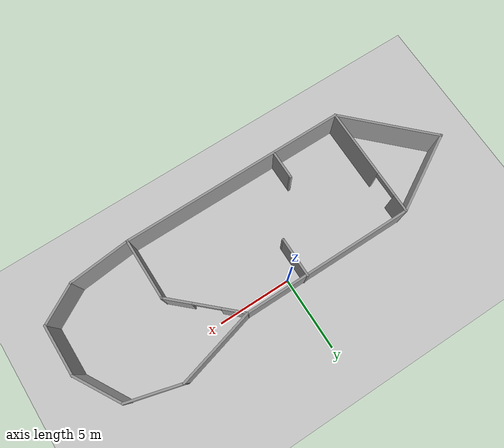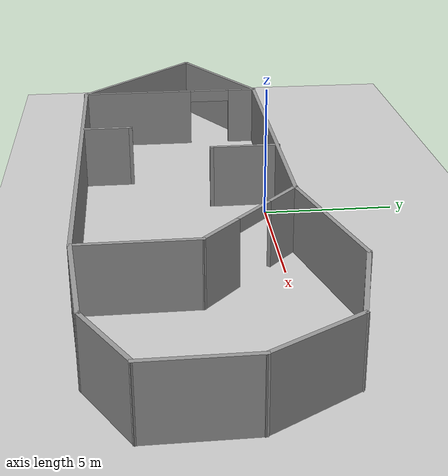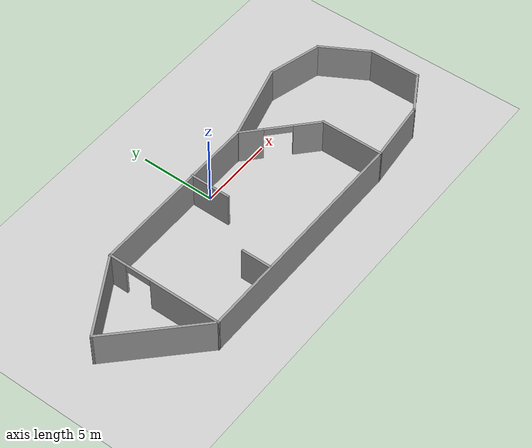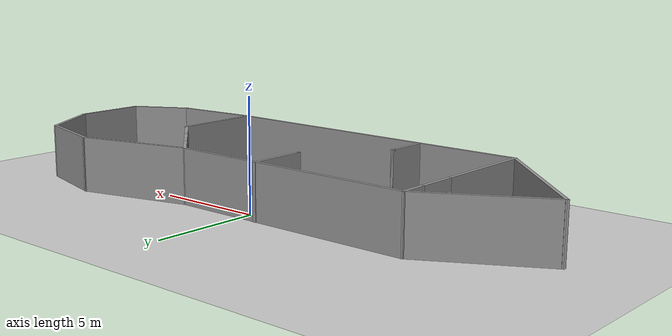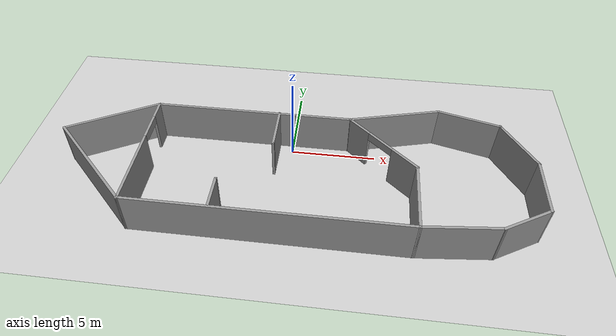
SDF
<sdf version="1.7">
 <world name="default">
  <light name="sun" type="directional">
   <pose>0 0 10 0 -0 0</pose>
   <diffuse>0.8 0.8 0.8 1</diffuse>
   <specular>0.2 0.2 0.2 1</specular>
   <attenuation>
    <range>1000</range>
    <constant>0.9</constant>
    <linear>0.01</linear>
    <quadratic>0.001</quadratic>
   </attenuation>
   <direction>-0.5 0.1 -0.9</direction>
   <spot><inner_angle>0</inner_angle><outer_angle>0</outer_angle><falloff>0</falloff></spot>
  </light>
  <model name="ground_plane">
   <static>1</static>
   <link name="link">
    <collision name="collision">
     <geometry><plane><normal>0 0 1</normal><size>100 100</size></plane></geometry>
     <surface>
      <contact><collide_bitmask>65535</collide_bitmask></contact>
      <friction><ode><mu>100</mu><mu2>50</mu2></ode></friction>
     </surface>
    </collision>
    <visual name="visual">
     <cast_shadows>0</cast_shadows>
     <geometry><plane><normal>0 0 1</normal><size>100 100</size></plane></geometry>
     <material>
      <script><uri>file://media/materials/scripts/gazebo.material</uri><name>Gazebo/Grey</name></script>
     </material>
    </visual>
   </link>
  </model>
  <gravity>0 0 -9.8</gravity>
  <magnetic_field>6e-06 2.3e-05 -4.2e-05</magnetic_field>
  <atmosphere type="adiabatic"/>
  <physics type="ode">
   <max_step_size>0.001</max_step_size>
   <real_time_factor>1</real_time_factor>
   <real_time_update_rate>1000</real_time_update_rate>
  </physics>
  <scene><ambient>0.4 0.4 0.4 1</ambient><background>0.7 0.7 0.7 1</background><shadows>1</shadows></scene>
  <spherical_coordinates>
   <surface_model>EARTH_WGS84</surface_model>
   <latitude_deg>0</latitude_deg>
   <longitude_deg>0</longitude_deg>
   <elevation>0</elevation>
   <heading_deg>0</heading_deg>
  </spherical_coordinates>
  <model name="home_service_test.world">
   <pose>0.292869 -2.56734 0 0 -0 0</pose>
   <link name="Wall_1">
    <pose>-8.51527 -0.697903 0 0 -0 -1.5708</pose>
    <visual name="Wall_1_Visual_0">
     <pose>-3.2635 0 1.25 0 -0 0</pose>
     <geometry><box><size>1.223 0.15 2.5</size></box></geometry>
     <material>
      <script><uri>file://media/materials/scripts/gazebo.material</uri><name>Gazebo/Grey</name></script>
      <ambient>1 1 1 1</ambient>
     </material>
     <meta><layer>0</layer></meta>
    </visual>
    <collision name="Wall_1_Collision_0">
     <geometry><box><size>1.223 0.15 2.5</size></box></geometry>
     <pose>-3.2635 0 1.25 0 -0 0</pose>
    </collision>
    <visual name="Wall_1_Visual_1">
     <pose>1.47617 0 1.25 0 -0 0</pose>
     <geometry><box><size>4.79767 0.15 2.5</size></box></geometry>
     <material>
      <script><uri>file://media/materials/scripts/gazebo.material</uri><name>Gazebo/Grey</name></script>
      <ambient>1 1 1 1</ambient>
     </material>
     <meta><layer>0</layer></meta>
    </visual>
    <collision name="Wall_1_Collision_1">
     <geometry><box><size>4.79767 0.15 2.5</size></box></geometry>
     <pose>1.47617 0 1.25 0 -0 0</pose>
    </collision>
    <visual name="Wall_1_Visual_2">
     <pose>-1.78733 0 2.25 0 -0 0</pose>
     <geometry><box><size>1.72934 0.15 0.5</size></box></geometry>
     <material>
      <script><uri>file://media/materials/scripts/gazebo.material</uri><name>Gazebo/Grey</name></script>
      <ambient>1 1 1 1</ambient>
     </material>
     <meta><layer>0</layer></meta>
    </visual>
    <collision name="Wall_1_Collision_2">
     <geometry><box><size>1.72934 0.15 0.5</size></box></geometry>
     <pose>-1.78733 0 2.25 0 -0 0</pose>
    </collision>
   </link>
   <link name="Wall_10">
    <collision name="Wall_10_Collision">
     <geometry><box><size>3.5 0.15 2.5</size></box></geometry>
     <pose>0 0 1.25 0 -0 0</pose>
    </collision>
    <visual name="Wall_10_Visual">
     <pose>0 0 1.25 0 -0 0</pose>
     <geometry><box><size>3.5 0.15 2.5</size></box></geometry>
     <material>
      <script><uri>file://media/materials/scripts/gazebo.material</uri><name>Gazebo/Grey</name></script>
      <ambient>1 1 1 1</ambient>
     </material>
     <meta><layer>0</layer></meta>
    </visual>
    <pose>13.3867 -0.995821 0 0 -0 -1.5708</pose>
   </link>
   <link name="Wall_11">
    <collision name="Wall_11_Collision">
     <geometry><box><size>3 0.15 2.5</size></box></geometry>
     <pose>0 0 1.25 0 -0 0</pose>
    </collision>
    <visual name="Wall_11_Visual">
     <pose>0 0 1.25 0 -0 0</pose>
     <geometry><box><size>3 0.15 2.5</size></box></geometry>
     <material>
      <script><uri>file://media/materials/scripts/gazebo.material</uri><name>Gazebo/Grey</name></script>
      <ambient>1 1 1 1</ambient>
     </material>
     <meta><layer>0</layer></meta>
    </visual>
    <pose>12.1526 -3.38332 0 0 -0 -2.61799</pose>
   </link>
   <link name="Wall_12">
    <collision name="Wall_12_Collision">
     <geometry><box><size>4.25354 0.15 2.5</size></box></geometry>
     <pose>0 0 1.25 0 -0 0</pose>
    </collision>
    <visual name="Wall_12_Visual">
     <pose>0 0 1.25 0 -0 0</pose>
     <geometry><box><size>4.25354 0.15 2.5</size></box></geometry>
     <material>
      <script><uri>file://media/materials/scripts/gazebo.material</uri><name>Gazebo/Grey</name></script>
      <ambient>1 1 1 1</ambient>
     </material>
     <meta><layer>0</layer></meta>
    </visual>
    <pose>8.87663 -4.29686 0 0 -0 -3.04345</pose>
   </link>
   <link name="Wall_13">
    <collision name="Wall_13_Collision">
     <geometry><box><size>0.15 0.15 2.5</size></box></geometry>
     <pose>0 0 1.25 0 -0 0</pose>
    </collision>
    <visual name="Wall_13_Visual">
     <pose>0 0 1.25 0 -0 0</pose>
     <geometry><box><size>0.15 0.15 2.5</size></box></geometry>
     <material>
      <script><uri>file://media/materials/scripts/gazebo.material</uri><name>Gazebo/Grey</name></script>
      <ambient>1 1 1 1</ambient>
     </material>
     <meta><layer>0</layer></meta>
    </visual>
    <pose>6.83473 -4.4979 0 0 -0 0</pose>
   </link>
   <link name="Wall_15">
    <collision name="Wall_15_Collision">
     <geometry><box><size>2.75 0.15 2.5</size></box></geometry>
     <pose>0 0 1.25 0 -0 0</pose>
    </collision>
    <visual name="Wall_15_Visual">
     <pose>0 0 1.25 0 -0 0</pose>
     <geometry><box><size>2.75 0.15 2.5</size></box></geometry>
     <material>
      <script><uri>file://media/materials/scripts/gazebo.material</uri><name>Gazebo/Grey</name></script>
      <ambient>1 1 1 1</ambient>
     </material>
     <meta><layer>0</layer></meta>
    </visual>
    <pose>-1.17259 1.86278 0 0 -0 -1.5708</pose>
   </link>
   <link name="Wall_16">
    <collision name="Wall_16_Collision">
     <geometry><box><size>0.15 0.15 2.5</size></box></geometry>
     <pose>0 0 1.25 0 -0 0</pose>
    </collision>
    <visual name="Wall_16_Visual">
     <pose>0 0 1.25 0 -0 0</pose>
     <geometry><box><size>0.15 0.15 2.5</size></box></geometry>
     <material>
      <script><uri>file://media/materials/scripts/gazebo.material</uri><name>Gazebo/Grey</name></script>
      <ambient>1 1 1 1</ambient>
     </material>
     <meta><layer>0</layer></meta>
    </visual>
    <pose>-1.17259 0.56278 0 0 -0 0</pose>
   </link>
   <link name="Wall_18">
    <collision name="Wall_18_Collision">
     <geometry><box><size>2 0.15 2.5</size></box></geometry>
     <pose>0 0 1.25 0 -0 0</pose>
    </collision>
    <visual name="Wall_18_Visual">
     <pose>0 0 1.25 0 -0 0</pose>
     <geometry><box><size>2 0.15 2.5</size></box></geometry>
     <material>
      <script><uri>file://media/materials/scripts/gazebo.material</uri><name>Gazebo/Grey</name></script>
      <ambient>1 1 1 1</ambient>
     </material>
     <meta><layer>0</layer></meta>
    </visual>
    <pose>-3.78197 -3.47741 0 0 -0 1.5708</pose>
   </link>
   <link name="Wall_19">
    <collision name="Wall_19_Collision">
     <geometry><box><size>0.15 0.15 2.5</size></box></geometry>
     <pose>0 0 1.25 0 -0 0</pose>
    </collision>
    <visual name="Wall_19_Visual">
     <pose>0 0 1.25 0 -0 0</pose>
     <geometry><box><size>0.15 0.15 2.5</size></box></geometry>
     <material>
      <script><uri>file://media/materials/scripts/gazebo.material</uri><name>Gazebo/Grey</name></script>
      <ambient>1 1 1 1</ambient>
     </material>
     <meta><layer>0</layer></meta>
    </visual>
    <pose>-3.78197 -2.55241 0 0 -0 0</pose>
   </link>
   <link name="Wall_2">
    <collision name="Wall_2_Collision">
     <geometry><box><size>15.5 0.15 2.5</size></box></geometry>
     <pose>0 0 1.25 0 -0 0</pose>
    </collision>
    <visual name="Wall_2_Visual">
     <pose>0 0 1.25 0 -0 0</pose>
     <geometry><box><size>15.5 0.15 2.5</size></box></geometry>
     <material>
      <script><uri>file://media/materials/scripts/gazebo.material</uri><name>Gazebo/Grey</name></script>
      <ambient>1 1 1 1</ambient>
     </material>
     <meta><layer>0</layer></meta>
    </visual>
    <pose>-0.840274 -4.4979 0 0 -0 0</pose>
   </link>
   <link name="Wall_21">
    <collision name="Wall_21_Collision">
     <geometry><box><size>5.75 0.15 2.5</size></box></geometry>
     <pose>0 0 1.25 0 -0 0</pose>
    </collision>
    <visual name="Wall_21_Visual">
     <pose>0 0 1.25 0 -0 0</pose>
     <geometry><box><size>5.75 0.15 2.5</size></box></geometry>
     <material>
      <script><uri>file://media/materials/scripts/gazebo.material</uri><name>Gazebo/Grey</name></script>
      <ambient>1 1 1 1</ambient>
     </material>
     <meta><layer>0</layer></meta>
    </visual>
    <pose>-10.9582 1.72743 0 0 -0 -2.61799</pose>
   </link>
   <link name="Wall_22">
    <collision name="Wall_22_Collision">
     <geometry><box><size>7.00415 0.15 2.5</size></box></geometry>
     <pose>0 0 1.25 0 -0 0</pose>
    </collision>
    <visual name="Wall_22_Visual">
     <pose>0 0 1.25 0 -0 0</pose>
     <geometry><box><size>7.00415 0.15 2.5</size></box></geometry>
     <material>
      <script><uri>file://media/materials/scripts/gazebo.material</uri><name>Gazebo/Grey</name></script>
      <ambient>1 1 1 1</ambient>
     </material>
     <meta><layer>0</layer></meta>
    </visual>
    <pose>-10.9492 -2.08524 0 0 -0 -0.781016</pose>
   </link>
   <link name="Wall_3">
    <collision name="Wall_3_Collision">
     <geometry><box><size>4.25 0.15 2.5</size></box></geometry>
     <pose>0 0 1.25 0 -0 0</pose>
    </collision>
    <visual name="Wall_3_Visual">
     <pose>0 0 1.25 0 -0 0</pose>
     <geometry><box><size>4.25 0.15 2.5</size></box></geometry>
     <material>
      <script><uri>file://media/materials/scripts/gazebo.material</uri><name>Gazebo/Grey</name></script>
      <ambient>1 1 1 1</ambient>
     </material>
     <meta><layer>0</layer></meta>
    </visual>
    <pose>6.83473 -2.4479 0 0 -0 1.5708</pose>
   </link>
   <link name="Wall_4">
    <pose>4.94058 1.36476 0 0 -0 2.39213</pose>
    <visual name="Wall_4_Visual_0">
     <pose>-1.70423 0 1.25 0 -0 0</pose>
     <geometry><box><size>1.91639 0.15 2.5</size></box></geometry>
     <material>
      <script><uri>file://media/materials/scripts/gazebo.material</uri><name>Gazebo/Grey</name></script>
      <ambient>1 1 1 1</ambient>
     </material>
     <meta><layer>0</layer></meta>
    </visual>
    <collision name="Wall_4_Collision_0">
     <geometry><box><size>1.91639 0.15 2.5</size></box></geometry>
     <pose>-1.70423 0 1.25 0 -0 0</pose>
    </collision>
    <visual name="Wall_4_Visual_1">
     <pose>1.83959 0 1.25 0 -0 0</pose>
     <geometry><box><size>1.64569 0.15 2.5</size></box></geometry>
     <material>
      <script><uri>file://media/materials/scripts/gazebo.material</uri><name>Gazebo/Grey</name></script>
      <ambient>1 1 1 1</ambient>
     </material>
     <meta><layer>0</layer></meta>
    </visual>
    <collision name="Wall_4_Collision_1">
     <geometry><box><size>1.64569 0.15 2.5</size></box></geometry>
     <pose>1.83959 0 1.25 0 -0 0</pose>
    </collision>
    <visual name="Wall_4_Visual_2">
     <pose>0.135353 0 2.25 0 -0 0</pose>
     <geometry><box><size>1.76278 0.15 0.5</size></box></geometry>
     <material>
      <script><uri>file://media/materials/scripts/gazebo.material</uri><name>Gazebo/Grey</name></script>
      <ambient>1 1 1 1</ambient>
     </material>
     <meta><layer>0</layer></meta>
    </visual>
    <collision name="Wall_4_Collision_2">
     <geometry><box><size>1.76278 0.15 0.5</size></box></geometry>
     <pose>0.135353 0 2.25 0 -0 0</pose>
    </collision>
   </link>
   <link name="Wall_5">
    <collision name="Wall_5_Collision">
     <geometry><box><size>11.75 0.15 2.5</size></box></geometry>
     <pose>0 0 1.25 0 -0 0</pose>
    </collision>
    <visual name="Wall_5_Visual">
     <pose>0 0 1.25 0 -0 0</pose>
     <geometry><box><size>11.75 0.15 2.5</size></box></geometry>
     <material>
      <script><uri>file://media/materials/scripts/gazebo.material</uri><name>Gazebo/Grey</name></script>
      <ambient>1 1 1 1</ambient>
     </material>
     <meta><layer>0</layer></meta>
    </visual>
    <pose>-2.73334 3.12743 0 0 -0 3.14159</pose>
   </link>
   <link name="Wall_7">
    <collision name="Wall_7_Collision">
     <geometry><box><size>5.5 0.15 2.5</size></box></geometry>
     <pose>0 0 1.25 0 -0 0</pose>
    </collision>
    <visual name="Wall_7_Visual">
     <pose>0 0 1.25 0 -0 0</pose>
     <geometry><box><size>5.5 0.15 2.5</size></box></geometry>
     <material>
      <script><uri>file://media/materials/scripts/gazebo.material</uri><name>Gazebo/Grey</name></script>
      <ambient>1 1 1 1</ambient>
     </material>
     <meta><layer>0</layer></meta>
    </visual>
    <pose>5.65051 3.81977 0 0 -0 0.261799</pose>
   </link>
   <link name="Wall_8">
    <collision name="Wall_8_Collision">
     <geometry><box><size>3.75 0.15 2.5</size></box></geometry>
     <pose>0 0 1.25 0 -0 0</pose>
    </collision>
    <visual name="Wall_8_Visual">
     <pose>0 0 1.25 0 -0 0</pose>
     <geometry><box><size>3.75 0.15 2.5</size></box></geometry>
     <material>
      <script><uri>file://media/materials/scripts/gazebo.material</uri><name>Gazebo/Grey</name></script>
      <ambient>1 1 1 1</ambient>
     </material>
     <meta><layer>0</layer></meta>
    </visual>
    <pose>9.97303 4.04624 0 0 -0 -0.261799</pose>
   </link>
   <link name="Wall_9">
    <collision name="Wall_9_Collision">
     <geometry><box><size>3.5 0.15 2.5</size></box></geometry>
     <pose>0 0 1.25 0 -0 0</pose>
    </collision>
    <visual name="Wall_9_Visual">
     <pose>0 0 1.25 0 -0 0</pose>
     <geometry><box><size>3.5 0.15 2.5</size></box></geometry>
     <material>
      <script><uri>file://media/materials/scripts/gazebo.material</uri><name>Gazebo/Grey</name></script>
      <ambient>1 1 1 1</ambient>
     </material>
     <meta><layer>0</layer></meta>
    </visual>
    <pose>12.5492 2.12977 0 0 -0 -1.0472</pose>
   </link>
   <static>1</static>
  </model>
 </world>
</sdf>
